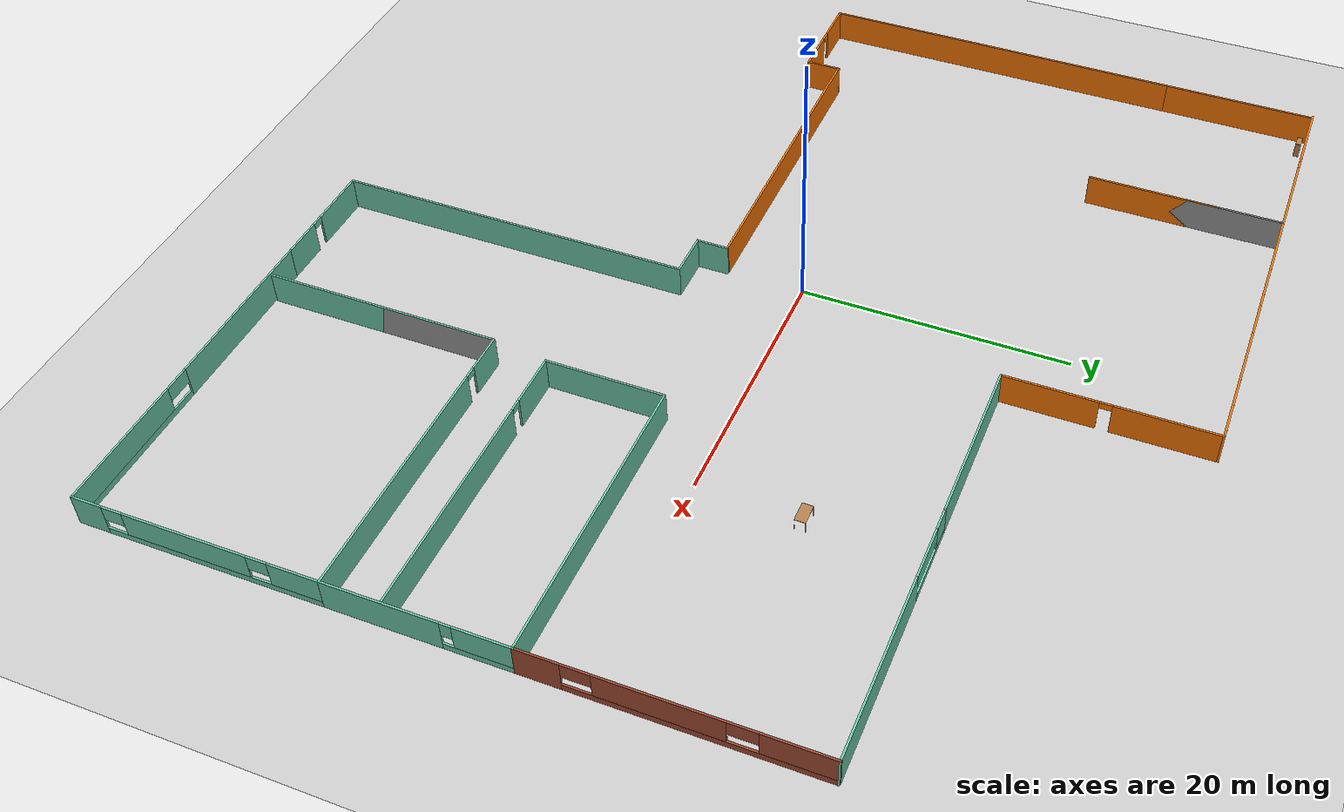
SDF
<sdf version="1.6">
 <world name="default">
  <plugin name="welcome_message" filename="libwelcome_message.so"/>
  <light name="sun" type="directional">
   <pose>0 0 10 0 -0 0</pose>
   <diffuse>0.8 0.8 0.8 1</diffuse>
   <specular>0.2 0.2 0.2 1</specular>
   <attenuation>
    <range>1000</range>
    <constant>0.9</constant>
    <linear>0.01</linear>
    <quadratic>0.001</quadratic>
   </attenuation>
   <direction>-0.5 0.1 -0.9</direction>
  </light>
  <model name="ground_plane">
   <static>1</static>
   <link name="link">
    <collision name="collision">
     <geometry><plane><normal>0 0 1</normal><size>100 100</size></plane></geometry>
     <surface>
      <contact><collide_bitmask>65535</collide_bitmask></contact>
      <friction><ode><mu>100</mu><mu2>50</mu2></ode></friction>
     </surface>
    </collision>
    <visual name="visual">
     <cast_shadows>0</cast_shadows>
     <geometry><plane><normal>0 0 1</normal><size>100 100</size></plane></geometry>
     <material>
      <script><uri>file://media/materials/scripts/gazebo.material</uri><name>Gazebo/Grey</name></script>
     </material>
    </visual>
   </link>
  </model>
  <gravity>0 0 -9.8</gravity>
  <magnetic_field>6e-06 2.3e-05 -4.2e-05</magnetic_field>
  <atmosphere type="adiabatic"/>
  <physics name="default_physics" default="0" type="ode">
   <max_step_size>0.001</max_step_size>
   <real_time_factor>1</real_time_factor>
   <real_time_update_rate>1000</real_time_update_rate>
  </physics>
  <scene><ambient>0.4 0.4 0.4 1</ambient><background>0.7 0.7 0.7 1</background><shadows>1</shadows></scene>
  <spherical_coordinates>
   <surface_model>EARTH_WGS84</surface_model>
   <latitude_deg>0</latitude_deg>
   <longitude_deg>0</longitude_deg>
   <elevation>0</elevation>
   <heading_deg>0</heading_deg>
  </spherical_coordinates>
  <model name="building1">
   <pose>2.8843 -1.97126 0 0 -0 0</pose>
   <link name="Wall_0">
    <collision name="Wall_0_Collision">
     <geometry><box><size>28.25 0.15 2.5</size></box></geometry>
     <pose>0 0 1.25 0 -0 0</pose>
    </collision>
    <visual name="Wall_0_Visual">
     <pose>0 0 1.25 0 -0 0</pose>
     <geometry><box><size>28.25 0.15 2.5</size></box></geometry>
     <material>
      <script><uri>file://media/materials/scripts/gazebo.material</uri><name>Gazebo/Grey</name></script>
      <ambient>0.996078 0.47451 0.0196078 1</ambient>
     </material>
     <meta><layer>0</layer></meta>
    </visual>
    <pose>-34.175 7.575 0 0 0 -1.5708</pose>
   </link>
   <link name="Wall_1">
    <pose>-30.375 -6.475 0 0 -0 0</pose>
    <visual name="Wall_1_Visual_0">
     <pose>-2.22971 0 1.25 0 -0 0</pose>
     <geometry><box><size>3.29058 0.15 2.5</size></box></geometry>
     <material>
      <script><uri>file://media/materials/scripts/gazebo.material</uri><name>Gazebo/Grey</name></script>
      <ambient>0.996078 0.47451 0.0196078 1</ambient>
     </material>
     <meta><layer>0</layer></meta>
    </visual>
    <collision name="Wall_1_Collision_0">
     <geometry><box><size>3.29058 0.15 2.5</size></box></geometry>
     <pose>-2.22971 0 1.25 0 -0 0</pose>
    </collision>
    <visual name="Wall_1_Visual_1">
     <pose>2.09529 0 1.25 0 -0 0</pose>
     <geometry><box><size>3.55942 0.15 2.5</size></box></geometry>
     <material>
      <script><uri>file://media/materials/scripts/gazebo.material</uri><name>Gazebo/Grey</name></script>
      <ambient>0.996078 0.47451 0.0196078 1</ambient>
     </material>
     <meta><layer>0</layer></meta>
    </visual>
    <collision name="Wall_1_Collision_1">
     <geometry><box><size>3.55942 0.15 2.5</size></box></geometry>
     <pose>2.09529 0 1.25 0 -0 0</pose>
    </collision>
    <visual name="Wall_1_Visual_2">
     <pose>-0.134418 0 2.25 0 -0 0</pose>
     <geometry><box><size>0.9 0.15 0.5</size></box></geometry>
     <material>
      <script><uri>file://media/materials/scripts/gazebo.material</uri><name>Gazebo/Grey</name></script>
      <ambient>0.996078 0.47451 0.0196078 1</ambient>
     </material>
     <meta><layer>0</layer></meta>
    </visual>
    <collision name="Wall_1_Collision_2">
     <geometry><box><size>0.9 0.15 0.5</size></box></geometry>
     <pose>-0.134418 0 2.25 0 -0 0</pose>
    </collision>
   </link>
   <link name="Wall_10">
    <pose>23.15 -15.225 0 0 -0 3.14159</pose>
    <visual name="Wall_10_Visual_0">
     <pose>-1.95259 0 1.25 0 -0 0</pose>
     <geometry><box><size>18.5948 0.15 2.5</size></box></geometry>
     <material>
      <script><uri>file://media/materials/scripts/gazebo.material</uri><name>Gazebo/Grey</name></script>
      <ambient>0.435294 0.796078 0.67451 1</ambient>
     </material>
     <meta><layer>0</layer></meta>
    </visual>
    <collision name="Wall_10_Collision_0">
     <geometry><box><size>18.5948 0.15 2.5</size></box></geometry>
     <pose>-1.95259 0 1.25 0 -0 0</pose>
    </collision>
    <visual name="Wall_10_Visual_1">
     <pose>9.74741 0 1.25 0 -0 0</pose>
     <geometry><box><size>3.00517 0.15 2.5</size></box></geometry>
     <material>
      <script><uri>file://media/materials/scripts/gazebo.material</uri><name>Gazebo/Grey</name></script>
      <ambient>0.435294 0.796078 0.67451 1</ambient>
     </material>
     <meta><layer>0</layer></meta>
    </visual>
    <collision name="Wall_10_Collision_1">
     <geometry><box><size>3.00517 0.15 2.5</size></box></geometry>
     <pose>9.74741 0 1.25 0 -0 0</pose>
    </collision>
    <visual name="Wall_10_Visual_2">
     <pose>7.79483 0 2.25 0 -0 0</pose>
     <geometry><box><size>0.9 0.15 0.5</size></box></geometry>
     <material>
      <script><uri>file://media/materials/scripts/gazebo.material</uri><name>Gazebo/Grey</name></script>
      <ambient>0.435294 0.796078 0.67451 1</ambient>
     </material>
     <meta><layer>0</layer></meta>
    </visual>
    <collision name="Wall_10_Collision_2">
     <geometry><box><size>0.9 0.15 0.5</size></box></geometry>
     <pose>7.79483 0 2.25 0 -0 0</pose>
    </collision>
   </link>
   <link name="Wall_11">
    <collision name="Wall_11_Collision">
     <geometry><box><size>18 0.15 2.5</size></box></geometry>
     <pose>0 0 1.25 0 -0 0</pose>
    </collision>
    <visual name="Wall_11_Visual">
     <pose>0 0 1.25 0 -0 0</pose>
     <geometry><box><size>18 0.15 2.5</size></box></geometry>
     <material>
      <script><uri>file://media/materials/scripts/gazebo.material</uri><name>Gazebo/Grey</name></script>
      <ambient>1 1 1 1</ambient>
     </material>
     <meta><layer>0</layer></meta>
    </visual>
    <pose>11.975 -24.15 0 0 0 -1.5708</pose>
   </link>
   <link name="Wall_12">
    <collision name="Wall_12_Collision">
     <geometry><box><size>17.5 0.15 2.5</size></box></geometry>
     <pose>0 0 1.25 0 -0 0</pose>
    </collision>
    <visual name="Wall_12_Visual">
     <pose>0 0 1.25 0 -0 0</pose>
     <geometry><box><size>17.5 0.15 2.5</size></box></geometry>
     <material>
      <script><uri>file://media/materials/scripts/gazebo.material</uri><name>Gazebo/Grey</name></script>
      <ambient>0.435294 0.796078 0.67451 1</ambient>
     </material>
     <meta><layer>0</layer></meta>
    </visual>
    <pose>11.975 -24.4 0 0 -0 1.5708</pose>
   </link>
   <link name="Wall_14">
    <pose>34.325 -8.675 0 0 -0 1.5708</pose>
    <visual name="Wall_14_Visual_0">
     <pose>-2.47216 0 1.25 0 -0 0</pose>
     <geometry><box><size>8.30568 0.15 2.5</size></box></geometry>
     <material>
      <script><uri>file://media/materials/scripts/gazebo.material</uri><name>Gazebo/Grey</name></script>
      <ambient>0.435294 0.796078 0.67451 1</ambient>
     </material>
     <meta><layer>0</layer></meta>
    </visual>
    <collision name="Wall_14_Collision_0">
     <geometry><box><size>8.30568 0.15 2.5</size></box></geometry>
     <pose>-2.47216 0 1.25 0 -0 0</pose>
    </collision>
    <visual name="Wall_14_Visual_1">
     <pose>4.15284 0 0.25 0 -0 0</pose>
     <geometry><box><size>4.94432 0.15 0.5</size></box></geometry>
     <material>
      <script><uri>file://media/materials/scripts/gazebo.material</uri><name>Gazebo/Grey</name></script>
      <ambient>0.435294 0.796078 0.67451 1</ambient>
     </material>
     <meta><layer>0</layer></meta>
    </visual>
    <collision name="Wall_14_Collision_1">
     <geometry><box><size>4.94432 0.15 0.5</size></box></geometry>
     <pose>4.15284 0 0.25 0 -0 0</pose>
    </collision>
    <visual name="Wall_14_Visual_2">
     <pose>4.55284 0 1.5 0 -0 0</pose>
     <geometry><box><size>4.14432 0.15 2</size></box></geometry>
     <material>
      <script><uri>file://media/materials/scripts/gazebo.material</uri><name>Gazebo/Grey</name></script>
      <ambient>0.435294 0.796078 0.67451 1</ambient>
     </material>
     <meta><layer>0</layer></meta>
    </visual>
    <collision name="Wall_14_Collision_2">
     <geometry><box><size>4.14432 0.15 2</size></box></geometry>
     <pose>4.55284 0 1.5 0 -0 0</pose>
    </collision>
    <visual name="Wall_14_Visual_3">
     <pose>2.08068 0 1.9 0 -0 0</pose>
     <geometry><box><size>0.8 0.15 1.2</size></box></geometry>
     <material>
      <script><uri>file://media/materials/scripts/gazebo.material</uri><name>Gazebo/Grey</name></script>
      <ambient>0.435294 0.796078 0.67451 1</ambient>
     </material>
     <meta><layer>0</layer></meta>
    </visual>
    <collision name="Wall_14_Collision_3">
     <geometry><box><size>0.8 0.15 1.2</size></box></geometry>
     <pose>2.08068 0 1.9 0 -0 0</pose>
    </collision>
   </link>
   <link name="Wall_15">
    <collision name="Wall_15_Collision">
     <geometry><box><size>22 0.15 2.5</size></box></geometry>
     <pose>0 0 1.25 0 -0 0</pose>
    </collision>
    <visual name="Wall_15_Visual">
     <pose>0 0 1.25 0 -0 0</pose>
     <geometry><box><size>22 0.15 2.5</size></box></geometry>
     <material>
      <script><uri>file://media/materials/scripts/gazebo.material</uri><name>Gazebo/Grey</name></script>
      <ambient>0.435294 0.796078 0.67451 1</ambient>
     </material>
     <meta><layer>0</layer></meta>
    </visual>
    <pose>23.4 -2.125 0 0 -0 3.14159</pose>
   </link>
   <link name="Wall_16">
    <collision name="Wall_16_Collision">
     <geometry><box><size>9 0.15 2.5</size></box></geometry>
     <pose>0 0 1.25 0 -0 0</pose>
    </collision>
    <visual name="Wall_16_Visual">
     <pose>0 0 1.25 0 -0 0</pose>
     <geometry><box><size>9 0.15 2.5</size></box></geometry>
     <material>
      <script><uri>file://media/materials/scripts/gazebo.material</uri><name>Gazebo/Grey</name></script>
      <ambient>0.435294 0.796078 0.67451 1</ambient>
     </material>
     <meta><layer>0</layer></meta>
    </visual>
    <pose>12.475 -6.55 0 0 0 -1.5708</pose>
   </link>
   <link name="Wall_17">
    <pose>23.4 -10.975 0 0 -0 0</pose>
    <visual name="Wall_17_Visual_0">
     <pose>-8.94755 0 1.25 0 -0 0</pose>
     <geometry><box><size>4.1049 0.15 2.5</size></box></geometry>
     <material>
      <script><uri>file://media/materials/scripts/gazebo.material</uri><name>Gazebo/Grey</name></script>
      <ambient>0.435294 0.796078 0.67451 1</ambient>
     </material>
     <meta><layer>0</layer></meta>
    </visual>
    <collision name="Wall_17_Collision_0">
     <geometry><box><size>4.1049 0.15 2.5</size></box></geometry>
     <pose>-8.94755 0 1.25 0 -0 0</pose>
    </collision>
    <visual name="Wall_17_Visual_1">
     <pose>2.50245 0 1.25 0 -0 0</pose>
     <geometry><box><size>16.9951 0.15 2.5</size></box></geometry>
     <material>
      <script><uri>file://media/materials/scripts/gazebo.material</uri><name>Gazebo/Grey</name></script>
      <ambient>0.435294 0.796078 0.67451 1</ambient>
     </material>
     <meta><layer>0</layer></meta>
    </visual>
    <collision name="Wall_17_Collision_1">
     <geometry><box><size>16.9951 0.15 2.5</size></box></geometry>
     <pose>2.50245 0 1.25 0 -0 0</pose>
    </collision>
    <visual name="Wall_17_Visual_2">
     <pose>-6.4451 0 2.25 0 -0 0</pose>
     <geometry><box><size>0.9 0.15 0.5</size></box></geometry>
     <material>
      <script><uri>file://media/materials/scripts/gazebo.material</uri><name>Gazebo/Grey</name></script>
      <ambient>0.435294 0.796078 0.67451 1</ambient>
     </material>
     <meta><layer>0</layer></meta>
    </visual>
    <collision name="Wall_17_Collision_2">
     <geometry><box><size>0.9 0.15 0.5</size></box></geometry>
     <pose>-6.4451 0 2.25 0 -0 0</pose>
    </collision>
   </link>
   <link name="Wall_19">
    <pose>34.325 8.05 0 0 -0 1.5708</pose>
    <visual name="Wall_19_Visual_0">
     <pose>-8.69186 0 1.25 0 -0 0</pose>
     <geometry><box><size>3.11628 0.15 2.5</size></box></geometry>
     <material>
      <script><uri>file://media/materials/scripts/gazebo.material</uri><name>Gazebo/Bricks</name></script>
      <ambient>0.435294 0.796078 0.67451 1</ambient>
     </material>
     <meta><layer>0</layer></meta>
    </visual>
    <collision name="Wall_19_Collision_0">
     <geometry><box><size>3.11628 0.15 2.5</size></box></geometry>
     <pose>-8.69186 0 1.25 0 -0 0</pose>
    </collision>
    <visual name="Wall_19_Visual_1">
     <pose>1.55814 0 0.25 0 -0 0</pose>
     <geometry><box><size>17.3837 0.15 0.5</size></box></geometry>
     <material>
      <script><uri>file://media/materials/scripts/gazebo.material</uri><name>Gazebo/Bricks</name></script>
      <ambient>0.435294 0.796078 0.67451 1</ambient>
     </material>
     <meta><layer>0</layer></meta>
    </visual>
    <collision name="Wall_19_Collision_1">
     <geometry><box><size>17.3837 0.15 0.5</size></box></geometry>
     <pose>1.55814 0 0.25 0 -0 0</pose>
    </collision>
    <visual name="Wall_19_Visual_2">
     <pose>-0.896427 0 1.5 0 -0 0</pose>
     <geometry><box><size>8.47458 0.15 2</size></box></geometry>
     <material>
      <script><uri>file://media/materials/scripts/gazebo.material</uri><name>Gazebo/Bricks</name></script>
      <ambient>0.435294 0.796078 0.67451 1</ambient>
     </material>
     <meta><layer>0</layer></meta>
    </visual>
    <collision name="Wall_19_Collision_2">
     <geometry><box><size>8.47458 0.15 2</size></box></geometry>
     <pose>-0.896427 0 1.5 0 -0 0</pose>
    </collision>
    <visual name="Wall_19_Visual_3">
     <pose>7.79543 0 1.5 0 -0 0</pose>
     <geometry><box><size>4.90914 0.15 2</size></box></geometry>
     <material>
      <script><uri>file://media/materials/scripts/gazebo.material</uri><name>Gazebo/Bricks</name></script>
      <ambient>0.435294 0.796078 0.67451 1</ambient>
     </material>
     <meta><layer>0</layer></meta>
    </visual>
    <collision name="Wall_19_Collision_3">
     <geometry><box><size>4.90914 0.15 2</size></box></geometry>
     <pose>7.79543 0 1.5 0 -0 0</pose>
    </collision>
    <visual name="Wall_19_Visual_4">
     <pose>-6.13372 0 1.9 0 -0 0</pose>
     <geometry><box><size>2 0.15 1.2</size></box></geometry>
     <material>
      <script><uri>file://media/materials/scripts/gazebo.material</uri><name>Gazebo/Bricks</name></script>
      <ambient>0.435294 0.796078 0.67451 1</ambient>
     </material>
     <meta><layer>0</layer></meta>
    </visual>
    <collision name="Wall_19_Collision_4">
     <geometry><box><size>2 0.15 1.2</size></box></geometry>
     <pose>-6.13372 0 1.9 0 -0 0</pose>
    </collision>
    <visual name="Wall_19_Visual_5">
     <pose>4.34086 0 1.9 0 -0 0</pose>
     <geometry><box><size>2 0.15 1.2</size></box></geometry>
     <material>
      <script><uri>file://media/materials/scripts/gazebo.material</uri><name>Gazebo/Bricks</name></script>
      <ambient>0.435294 0.796078 0.67451 1</ambient>
     </material>
     <meta><layer>0</layer></meta>
    </visual>
    <collision name="Wall_19_Collision_5">
     <geometry><box><size>2 0.15 1.2</size></box></geometry>
     <pose>4.34086 0 1.9 0 -0 0</pose>
    </collision>
   </link>
   <link name="Wall_2">
    <collision name="Wall_2_Collision">
     <geometry><box><size>2.75 0.15 2.5</size></box></geometry>
     <pose>0 0 1.25 0 -0 0</pose>
    </collision>
    <visual name="Wall_2_Visual">
     <pose>0 0 1.25 0 -0 0</pose>
     <geometry><box><size>2.75 0.15 2.5</size></box></geometry>
     <material>
      <script><uri>file://media/materials/scripts/gazebo.material</uri><name>Gazebo/Grey</name></script>
      <ambient>0.996078 0.47451 0.0196078 1</ambient>
     </material>
     <meta><layer>0</layer></meta>
    </visual>
    <pose>-26.575 -5.175 0 0 -0 1.5708</pose>
   </link>
   <link name="Wall_20">
    <pose>24.65 18.225 0 0 -0 3.14159</pose>
    <visual name="Wall_20_Visual_0">
     <pose>-2.88254 0 1.25 0 -0 0</pose>
     <geometry><box><size>13.7349 0.15 2.5</size></box></geometry>
     <material>
      <script><uri>file://media/materials/scripts/gazebo.material</uri><name>Gazebo/Grey</name></script>
      <ambient>0.435294 0.796078 0.67451 1</ambient>
     </material>
     <meta><layer>0</layer></meta>
    </visual>
    <collision name="Wall_20_Collision_0">
     <geometry><box><size>13.7349 0.15 2.5</size></box></geometry>
     <pose>-2.88254 0 1.25 0 -0 0</pose>
    </collision>
    <visual name="Wall_20_Visual_1">
     <pose>6.86746 0 0.25 0 -0 0</pose>
     <geometry><box><size>5.76509 0.15 0.5</size></box></geometry>
     <material>
      <script><uri>file://media/materials/scripts/gazebo.material</uri><name>Gazebo/Grey</name></script>
      <ambient>0.435294 0.796078 0.67451 1</ambient>
     </material>
     <meta><layer>0</layer></meta>
    </visual>
    <collision name="Wall_20_Collision_1">
     <geometry><box><size>5.76509 0.15 0.5</size></box></geometry>
     <pose>6.86746 0 0.25 0 -0 0</pose>
    </collision>
    <visual name="Wall_20_Visual_2">
     <pose>8.86746 0 1.5 0 -0 0</pose>
     <geometry><box><size>1.76509 0.15 2</size></box></geometry>
     <material>
      <script><uri>file://media/materials/scripts/gazebo.material</uri><name>Gazebo/Grey</name></script>
      <ambient>0.435294 0.796078 0.67451 1</ambient>
     </material>
     <meta><layer>0</layer></meta>
    </visual>
    <collision name="Wall_20_Collision_2">
     <geometry><box><size>1.76509 0.15 2</size></box></geometry>
     <pose>8.86746 0 1.5 0 -0 0</pose>
    </collision>
    <visual name="Wall_20_Visual_3">
     <pose>5.98491 0 1.9 0 -0 0</pose>
     <geometry><box><size>4 0.15 1.2</size></box></geometry>
     <material>
      <script><uri>file://media/materials/scripts/gazebo.material</uri><name>Gazebo/Grey</name></script>
      <ambient>0.435294 0.796078 0.67451 1</ambient>
     </material>
     <meta><layer>0</layer></meta>
    </visual>
    <collision name="Wall_20_Collision_3">
     <geometry><box><size>4 0.15 1.2</size></box></geometry>
     <pose>5.98491 0 1.9 0 -0 0</pose>
    </collision>
   </link>
   <link name="Wall_21">
    <collision name="Wall_21_Collision">
     <geometry><box><size>12.75 0.15 2.5</size></box></geometry>
     <pose>0 0 1.25 0 -0 0</pose>
    </collision>
    <visual name="Wall_21_Visual">
     <pose>0 0 1.25 0 -0 0</pose>
     <geometry><box><size>12.75 0.15 2.5</size></box></geometry>
     <material>
      <script><uri>file://media/materials/scripts/gazebo.material</uri><name>Gazebo/Grey</name></script>
      <ambient>0.435294 0.796078 0.67451 1</ambient>
     </material>
     <meta><layer>0</layer></meta>
    </visual>
    <pose>8.675 18.225 0 0 -0 3.14159</pose>
   </link>
   <link name="Wall_22">
    <pose>2.375 25.775 0 0 -0 1.5708</pose>
    <visual name="Wall_22_Visual_0">
     <pose>-4.18684 0 1.25 0 -0 0</pose>
     <geometry><box><size>6.87632 0.15 2.5</size></box></geometry>
     <material>
      <script><uri>file://media/materials/scripts/gazebo.material</uri><name>Gazebo/Grey</name></script>
      <ambient>0.996078 0.47451 0.0196078 1</ambient>
     </material>
     <meta><layer>0</layer></meta>
    </visual>
    <collision name="Wall_22_Collision_0">
     <geometry><box><size>6.87632 0.15 2.5</size></box></geometry>
     <pose>-4.18684 0 1.25 0 -0 0</pose>
    </collision>
    <visual name="Wall_22_Visual_1">
     <pose>3.88816 0 1.25 0 -0 0</pose>
     <geometry><box><size>7.47368 0.15 2.5</size></box></geometry>
     <material>
      <script><uri>file://media/materials/scripts/gazebo.material</uri><name>Gazebo/Grey</name></script>
      <ambient>0.996078 0.47451 0.0196078 1</ambient>
     </material>
     <meta><layer>0</layer></meta>
    </visual>
    <collision name="Wall_22_Collision_1">
     <geometry><box><size>7.47368 0.15 2.5</size></box></geometry>
     <pose>3.88816 0 1.25 0 -0 0</pose>
    </collision>
    <visual name="Wall_22_Visual_2">
     <pose>-0.298676 0 2.25 0 -0 0</pose>
     <geometry><box><size>0.9 0.15 0.5</size></box></geometry>
     <material>
      <script><uri>file://media/materials/scripts/gazebo.material</uri><name>Gazebo/Grey</name></script>
      <ambient>0.996078 0.47451 0.0196078 1</ambient>
     </material>
     <meta><layer>0</layer></meta>
    </visual>
    <collision name="Wall_22_Collision_2">
     <geometry><box><size>0.9 0.15 0.5</size></box></geometry>
     <pose>-0.298676 0 2.25 0 -0 0</pose>
    </collision>
   </link>
   <link name="Wall_23">
    <pose>-9.05 33.325 0 0 -0 3.14159</pose>
    <visual name="Wall_23_Visual_0">
     <pose>-6.28232 0 1.25 0 -0 0</pose>
     <geometry><box><size>10.4354 0.15 2.5</size></box></geometry>
     <material>
      <script><uri>file://media/materials/scripts/gazebo.material</uri><name>Gazebo/Grey</name></script>
      <ambient>0.996078 0.47451 0.0196078 1</ambient>
     </material>
     <meta><layer>0</layer></meta>
    </visual>
    <collision name="Wall_23_Collision_0">
     <geometry><box><size>10.4354 0.15 2.5</size></box></geometry>
     <pose>-6.28232 0 1.25 0 -0 0</pose>
    </collision>
    <visual name="Wall_23_Visual_1">
     <pose>5.21768 0 0.25 0 -0 0</pose>
     <geometry><box><size>12.5646 0.15 0.5</size></box></geometry>
     <material>
      <script><uri>file://media/materials/scripts/gazebo.material</uri><name>Gazebo/Grey</name></script>
      <ambient>0.996078 0.47451 0.0196078 1</ambient>
     </material>
     <meta><layer>0</layer></meta>
    </visual>
    <collision name="Wall_23_Collision_1">
     <geometry><box><size>12.5646 0.15 0.5</size></box></geometry>
     <pose>5.21768 0 0.25 0 -0 0</pose>
    </collision>
    <visual name="Wall_23_Visual_2">
     <pose>6.71768 0 1.5 0 -0 0</pose>
     <geometry><box><size>9.56464 0.15 2</size></box></geometry>
     <material>
      <script><uri>file://media/materials/scripts/gazebo.material</uri><name>Gazebo/Grey</name></script>
      <ambient>0.996078 0.47451 0.0196078 1</ambient>
     </material>
     <meta><layer>0</layer></meta>
    </visual>
    <collision name="Wall_23_Collision_2">
     <geometry><box><size>9.56464 0.15 2</size></box></geometry>
     <pose>6.71768 0 1.5 0 -0 0</pose>
    </collision>
    <visual name="Wall_23_Visual_3">
     <pose>0.435356 0 1.9 0 -0 0</pose>
     <geometry><box><size>3 0.15 1.2</size></box></geometry>
     <material>
      <script><uri>file://media/materials/scripts/gazebo.material</uri><name>Gazebo/Grey</name></script>
      <ambient>0.996078 0.47451 0.0196078 1</ambient>
     </material>
     <meta><layer>0</layer></meta>
    </visual>
    <collision name="Wall_23_Collision_3">
     <geometry><box><size>3 0.15 1.2</size></box></geometry>
     <pose>0.435356 0 1.9 0 -0 0</pose>
    </collision>
   </link>
   <link name="Wall_24">
    <collision name="Wall_24_Collision">
     <geometry><box><size>14.75 0.15 2.5</size></box></geometry>
     <pose>0 0 1.25 0 -0 0</pose>
    </collision>
    <visual name="Wall_24_Visual">
     <pose>0 0 1.25 0 -0 0</pose>
     <geometry><box><size>14.75 0.15 2.5</size></box></geometry>
     <material>
      <script><uri>file://media/materials/scripts/gazebo.material</uri><name>Gazebo/Grey</name></script>
      <ambient>1 1 1 1</ambient>
     </material>
     <meta><layer>0</layer></meta>
    </visual>
    <pose>-20.475 26.025 0 0 0 -1.5708</pose>
   </link>
   <link name="Wall_25">
    <collision name="Wall_25_Collision">
     <geometry><box><size>14.5 0.15 2.5</size></box></geometry>
     <pose>0 0 1.25 0 -0 0</pose>
    </collision>
    <visual name="Wall_25_Visual">
     <pose>0 0 1.25 0 -0 0</pose>
     <geometry><box><size>14.5 0.15 2.5</size></box></geometry>
     <material>
      <script><uri>file://media/materials/scripts/gazebo.material</uri><name>Gazebo/Grey</name></script>
      <ambient>0.996078 0.47451 0.0196078 1</ambient>
     </material>
     <meta><layer>0</layer></meta>
    </visual>
    <pose>-20.475 25.9 0 0 -0 1.5708</pose>
   </link>
   <link name="Wall_26">
    <collision name="Wall_26_Collision">
     <geometry><box><size>0.4 0.15 2.5</size></box></geometry>
     <pose>0 0 1.25 0 -0 0</pose>
    </collision>
    <visual name="Wall_26_Visual">
     <pose>0 0 1.25 0 -0 0</pose>
     <geometry><box><size>0.4 0.15 2.5</size></box></geometry>
     <material>
      <script><uri>file://media/materials/scripts/gazebo.material</uri><name>Gazebo/Grey</name></script>
      <ambient>1 1 1 1</ambient>
     </material>
     <meta><layer>0</layer></meta>
    </visual>
    <pose>-20.475 33.2 0 0 -0 1.5708</pose>
   </link>
   <link name="Wall_27">
    <pose>-27.4 33.325 0 0 -0 3.14159</pose>
    <visual name="Wall_27_Visual_0">
     <pose>-3.49206 0 1.25 0 -0 0</pose>
     <geometry><box><size>7.01587 0.15 2.5</size></box></geometry>
     <material>
      <script><uri>file://media/materials/scripts/gazebo.material</uri><name>Gazebo/Grey</name></script>
      <ambient>0.996078 0.47451 0.0196078 1</ambient>
     </material>
     <meta><layer>0</layer></meta>
    </visual>
    <collision name="Wall_27_Collision_0">
     <geometry><box><size>7.01587 0.15 2.5</size></box></geometry>
     <pose>-3.49206 0 1.25 0 -0 0</pose>
    </collision>
    <visual name="Wall_27_Visual_1">
     <pose>3.50794 0 0.25 0 -0 0</pose>
     <geometry><box><size>6.98413 0.15 0.5</size></box></geometry>
     <material>
      <script><uri>file://media/materials/scripts/gazebo.material</uri><name>Gazebo/Grey</name></script>
      <ambient>0.996078 0.47451 0.0196078 1</ambient>
     </material>
     <meta><layer>0</layer></meta>
    </visual>
    <collision name="Wall_27_Collision_1">
     <geometry><box><size>6.98413 0.15 0.5</size></box></geometry>
     <pose>3.50794 0 0.25 0 -0 0</pose>
    </collision>
    <visual name="Wall_27_Visual_2">
     <pose>3.90794 0 1.5 0 -0 0</pose>
     <geometry><box><size>6.18413 0.15 2</size></box></geometry>
     <material>
      <script><uri>file://media/materials/scripts/gazebo.material</uri><name>Gazebo/Grey</name></script>
      <ambient>0.996078 0.47451 0.0196078 1</ambient>
     </material>
     <meta><layer>0</layer></meta>
    </visual>
    <collision name="Wall_27_Collision_2">
     <geometry><box><size>6.18413 0.15 2</size></box></geometry>
     <pose>3.90794 0 1.5 0 -0 0</pose>
    </collision>
    <visual name="Wall_27_Visual_3">
     <pose>0.415874 0 1.9 0 -0 0</pose>
     <geometry><box><size>0.8 0.15 1.2</size></box></geometry>
     <material>
      <script><uri>file://media/materials/scripts/gazebo.material</uri><name>Gazebo/Grey</name></script>
      <ambient>0.996078 0.47451 0.0196078 1</ambient>
     </material>
     <meta><layer>0</layer></meta>
    </visual>
    <collision name="Wall_27_Collision_3">
     <geometry><box><size>0.8 0.15 1.2</size></box></geometry>
     <pose>0.415874 0 1.9 0 -0 0</pose>
    </collision>
   </link>
   <link name="Wall_3">
    <collision name="Wall_3_Collision">
     <geometry><box><size>24 0.15 2.5</size></box></geometry>
     <pose>0 0 1.25 0 -0 0</pose>
    </collision>
    <visual name="Wall_3_Visual">
     <pose>0 0 1.25 0 -0 0</pose>
     <geometry><box><size>24 0.15 2.5</size></box></geometry>
     <material>
      <script><uri>file://media/materials/scripts/gazebo.material</uri><name>Gazebo/Grey</name></script>
      <ambient>0.996078 0.47451 0.0196078 1</ambient>
     </material>
     <meta><layer>0</layer></meta>
    </visual>
    <pose>-14.65 -3.875 0 0 -0 0</pose>
   </link>
   <link name="Wall_30">
    <collision name="Wall_30_Collision">
     <geometry><box><size>11.75 0.15 2.5</size></box></geometry>
     <pose>0 0 1.25 0 -0 0</pose>
    </collision>
    <visual name="Wall_30_Visual">
     <pose>0 0 1.25 0 -0 0</pose>
     <geometry><box><size>11.75 0.15 2.5</size></box></geometry>
     <material>
      <script><uri>file://media/materials/scripts/gazebo.material</uri><name>Gazebo/Grey</name></script>
      <ambient>0.996078 0.47451 0.0196078 1</ambient>
     </material>
     <meta><layer>0</layer></meta>
    </visual>
    <pose>-34.175 27.425 0 0 -0 1.5708</pose>
   </link>
   <link name="Wall_4">
    <collision name="Wall_4_Collision">
     <geometry><box><size>2.5 0.15 2.5</size></box></geometry>
     <pose>0 0 1.25 0 -0 0</pose>
    </collision>
    <visual name="Wall_4_Visual">
     <pose>0 0 1.25 0 -0 0</pose>
     <geometry><box><size>2.5 0.15 2.5</size></box></geometry>
     <material>
      <script><uri>file://media/materials/scripts/gazebo.material</uri><name>Gazebo/Grey</name></script>
      <ambient>0.435294 0.796078 0.67451 1</ambient>
     </material>
     <meta><layer>0</layer></meta>
    </visual>
    <pose>-2.725 -5.05 0 0 0 -1.5708</pose>
   </link>
   <link name="Wall_5">
    <collision name="Wall_5_Collision">
     <geometry><box><size>3.5 0.15 2.5</size></box></geometry>
     <pose>0 0 1.25 0 -0 0</pose>
    </collision>
    <visual name="Wall_5_Visual">
     <pose>0 0 1.25 0 -0 0</pose>
     <geometry><box><size>3.5 0.15 2.5</size></box></geometry>
     <material>
      <script><uri>file://media/materials/scripts/gazebo.material</uri><name>Gazebo/Grey</name></script>
      <ambient>0.435294 0.796078 0.67451 1</ambient>
     </material>
     <meta><layer>0</layer></meta>
    </visual>
    <pose>-1.05 -6.225 0 0 -0 0</pose>
   </link>
   <link name="Wall_6">
    <collision name="Wall_6_Collision">
     <geometry><box><size>27.25 0.15 2.5</size></box></geometry>
     <pose>0 0 1.25 0 -0 0</pose>
    </collision>
    <visual name="Wall_6_Visual">
     <pose>0 0 1.25 0 -0 0</pose>
     <geometry><box><size>27.25 0.15 2.5</size></box></geometry>
     <material>
      <script><uri>file://media/materials/scripts/gazebo.material</uri><name>Gazebo/Grey</name></script>
      <ambient>0.435294 0.796078 0.67451 1</ambient>
     </material>
     <meta><layer>0</layer></meta>
    </visual>
    <pose>0.625002 -19.775 0 0 0 -1.5708</pose>
   </link>
   <link name="Wall_7">
    <pose>4.925 -33.325 0 0 -0 0</pose>
    <visual name="Wall_7_Visual_0">
     <pose>-2.04468 0 1.25 0 -0 0</pose>
     <geometry><box><size>4.66063 0.15 2.5</size></box></geometry>
     <material>
      <script><uri>file://media/materials/scripts/gazebo.material</uri><name>Gazebo/Grey</name></script>
      <ambient>0.435294 0.796078 0.67451 1</ambient>
     </material>
     <meta><layer>0</layer></meta>
    </visual>
    <collision name="Wall_7_Collision_0">
     <geometry><box><size>4.66063 0.15 2.5</size></box></geometry>
     <pose>-2.04468 0 1.25 0 -0 0</pose>
    </collision>
    <visual name="Wall_7_Visual_1">
     <pose>2.78031 0 1.25 0 -0 0</pose>
     <geometry><box><size>3.18937 0.15 2.5</size></box></geometry>
     <material>
      <script><uri>file://media/materials/scripts/gazebo.material</uri><name>Gazebo/Grey</name></script>
      <ambient>0.435294 0.796078 0.67451 1</ambient>
     </material>
     <meta><layer>0</layer></meta>
    </visual>
    <collision name="Wall_7_Collision_1">
     <geometry><box><size>3.18937 0.15 2.5</size></box></geometry>
     <pose>2.78031 0 1.25 0 -0 0</pose>
    </collision>
    <visual name="Wall_7_Visual_2">
     <pose>0.73563 0 2.25 0 -0 0</pose>
     <geometry><box><size>0.9 0.15 0.5</size></box></geometry>
     <material>
      <script><uri>file://media/materials/scripts/gazebo.material</uri><name>Gazebo/Grey</name></script>
      <ambient>0.435294 0.796078 0.67451 1</ambient>
     </material>
     <meta><layer>0</layer></meta>
    </visual>
    <collision name="Wall_7_Collision_2">
     <geometry><box><size>0.9 0.15 0.5</size></box></geometry>
     <pose>0.73563 0 2.25 0 -0 0</pose>
    </collision>
   </link>
   <link name="Wall_8">
    <pose>21.775 -33.325 0 0 -0 0</pose>
    <visual name="Wall_8_Visual_0">
     <pose>-6.07614 0 1.25 0 -0 0</pose>
     <geometry><box><size>13.0977 0.15 2.5</size></box></geometry>
     <material>
      <script><uri>file://media/materials/scripts/gazebo.material</uri><name>Gazebo/Grey</name></script>
      <ambient>0.435294 0.796078 0.67451 1</ambient>
     </material>
     <meta><layer>0</layer></meta>
    </visual>
    <collision name="Wall_8_Collision_0">
     <geometry><box><size>13.0977 0.15 2.5</size></box></geometry>
     <pose>-6.07614 0 1.25 0 -0 0</pose>
    </collision>
    <visual name="Wall_8_Visual_1">
     <pose>6.54886 0 0.25 0 -0 0</pose>
     <geometry><box><size>12.1523 0.15 0.5</size></box></geometry>
     <material>
      <script><uri>file://media/materials/scripts/gazebo.material</uri><name>Gazebo/Grey</name></script>
      <ambient>0.435294 0.796078 0.67451 1</ambient>
     </material>
     <meta><layer>0</layer></meta>
    </visual>
    <collision name="Wall_8_Collision_1">
     <geometry><box><size>12.1523 0.15 0.5</size></box></geometry>
     <pose>6.54886 0 0.25 0 -0 0</pose>
    </collision>
    <visual name="Wall_8_Visual_2">
     <pose>7.54886 0 1.5 0 -0 0</pose>
     <geometry><box><size>10.1523 0.15 2</size></box></geometry>
     <material>
      <script><uri>file://media/materials/scripts/gazebo.material</uri><name>Gazebo/Grey</name></script>
      <ambient>0.435294 0.796078 0.67451 1</ambient>
     </material>
     <meta><layer>0</layer></meta>
    </visual>
    <collision name="Wall_8_Collision_2">
     <geometry><box><size>10.1523 0.15 2</size></box></geometry>
     <pose>7.54886 0 1.5 0 -0 0</pose>
    </collision>
    <visual name="Wall_8_Visual_3">
     <pose>1.47272 0 1.9 0 -0 0</pose>
     <geometry><box><size>2 0.15 1.2</size></box></geometry>
     <material>
      <script><uri>file://media/materials/scripts/gazebo.material</uri><name>Gazebo/Grey</name></script>
      <ambient>0.435294 0.796078 0.67451 1</ambient>
     </material>
     <meta><layer>0</layer></meta>
    </visual>
    <collision name="Wall_8_Collision_3">
     <geometry><box><size>2 0.15 1.2</size></box></geometry>
     <pose>1.47272 0 1.9 0 -0 0</pose>
    </collision>
   </link>
   <link name="Wall_9">
    <pose>34.325 -24.275 0 0 -0 1.5708</pose>
    <visual name="Wall_9_Visual_0">
     <pose>-7.9629 0 1.25 0 -0 0</pose>
     <geometry><box><size>2.3242 0.15 2.5</size></box></geometry>
     <material>
      <script><uri>file://media/materials/scripts/gazebo.material</uri><name>Gazebo/Grey</name></script>
      <ambient>0.435294 0.796078 0.67451 1</ambient>
     </material>
     <meta><layer>0</layer></meta>
    </visual>
    <collision name="Wall_9_Collision_0">
     <geometry><box><size>2.3242 0.15 2.5</size></box></geometry>
     <pose>-7.9629 0 1.25 0 -0 0</pose>
    </collision>
    <visual name="Wall_9_Visual_1">
     <pose>1.1621 0 0.25 0 -0 0</pose>
     <geometry><box><size>15.9258 0.15 0.5</size></box></geometry>
     <material>
      <script><uri>file://media/materials/scripts/gazebo.material</uri><name>Gazebo/Grey</name></script>
      <ambient>0.435294 0.796078 0.67451 1</ambient>
     </material>
     <meta><layer>0</layer></meta>
    </visual>
    <collision name="Wall_9_Collision_1">
     <geometry><box><size>15.9258 0.15 0.5</size></box></geometry>
     <pose>1.1621 0 0.25 0 -0 0</pose>
    </collision>
    <visual name="Wall_9_Visual_2">
     <pose>-0.731672 0 1.5 0 -0 0</pose>
     <geometry><box><size>9.13825 0.15 2</size></box></geometry>
     <material>
      <script><uri>file://media/materials/scripts/gazebo.material</uri><name>Gazebo/Grey</name></script>
      <ambient>0.435294 0.796078 0.67451 1</ambient>
     </material>
     <meta><layer>0</layer></meta>
    </visual>
    <collision name="Wall_9_Collision_2">
     <geometry><box><size>9.13825 0.15 2</size></box></geometry>
     <pose>-0.731672 0 1.5 0 -0 0</pose>
    </collision>
    <visual name="Wall_9_Visual_3">
     <pose>7.23123 0 1.5 0 -0 0</pose>
     <geometry><box><size>3.78755 0.15 2</size></box></geometry>
     <material>
      <script><uri>file://media/materials/scripts/gazebo.material</uri><name>Gazebo/Grey</name></script>
      <ambient>0.435294 0.796078 0.67451 1</ambient>
     </material>
     <meta><layer>0</layer></meta>
    </visual>
    <collision name="Wall_9_Collision_3">
     <geometry><box><size>3.78755 0.15 2</size></box></geometry>
     <pose>7.23123 0 1.5 0 -0 0</pose>
    </collision>
    <visual name="Wall_9_Visual_4">
     <pose>-6.0508 0 1.9 0 -0 0</pose>
     <geometry><box><size>1.5 0.15 1.2</size></box></geometry>
     <material>
      <script><uri>file://media/materials/scripts/gazebo.material</uri><name>Gazebo/Grey</name></script>
      <ambient>0.435294 0.796078 0.67451 1</ambient>
     </material>
     <meta><layer>0</layer></meta>
    </visual>
    <collision name="Wall_9_Collision_4">
     <geometry><box><size>1.5 0.15 1.2</size></box></geometry>
     <pose>-6.0508 0 1.9 0 -0 0</pose>
    </collision>
    <visual name="Wall_9_Visual_5">
     <pose>4.58745 0 1.9 0 -0 0</pose>
     <geometry><box><size>1.5 0.15 1.2</size></box></geometry>
     <material>
      <script><uri>file://media/materials/scripts/gazebo.material</uri><name>Gazebo/Grey</name></script>
      <ambient>0.435294 0.796078 0.67451 1</ambient>
     </material>
     <meta><layer>0</layer></meta>
    </visual>
    <collision name="Wall_9_Collision_5">
     <geometry><box><size>1.5 0.15 1.2</size></box></geometry>
     <pose>4.58745 0 1.9 0 -0 0</pose>
    </collision>
   </link>
   <static>1</static>
  </model>
  <model name="table">
   <static>1</static>
   <link name="link">
    <collision name="surface">
     <pose>0 0 1 0 -0 0</pose>
     <geometry><box><size>1.5 0.8 0.03</size></box></geometry>
     <surface><friction><ode><mu>0.6</mu><mu2>0.6</mu2></ode></friction></surface>
    </collision>
    <visual name="visual1">
     <pose>0 0 1 0 -0 0</pose>
     <geometry><box><size>1.5 0.8 0.03</size></box></geometry>
     <material>
      <script><uri>file://media/materials/scripts/gazebo.material</uri><name>Gazebo/Wood</name></script>
     </material>
    </visual>
    <collision name="front_left_leg">
     <pose>0.68 0.38 0.5 0 -0 0</pose>
     <geometry><cylinder><radius>0.02</radius><length>1</length></cylinder></geometry>
    </collision>
    <visual name="front_left_leg">
     <pose>0.68 0.38 0.5 0 -0 0</pose>
     <geometry><cylinder><radius>0.02</radius><length>1</length></cylinder></geometry>
     <material>
      <script><uri>file://media/materials/scripts/gazebo.material</uri><name>Gazebo/Grey</name></script>
     </material>
    </visual>
    <collision name="front_right_leg">
     <pose>0.68 -0.38 0.5 0 -0 0</pose>
     <geometry><cylinder><radius>0.02</radius><length>1</length></cylinder></geometry>
    </collision>
    <visual name="front_right_leg">
     <pose>0.68 -0.38 0.5 0 -0 0</pose>
     <geometry><cylinder><radius>0.02</radius><length>1</length></cylinder></geometry>
     <material>
      <script><uri>file://media/materials/scripts/gazebo.material</uri><name>Gazebo/Grey</name></script>
     </material>
    </visual>
    <collision name="back_right_leg">
     <pose>-0.68 -0.38 0.5 0 -0 0</pose>
     <geometry><cylinder><radius>0.02</radius><length>1</length></cylinder></geometry>
    </collision>
    <visual name="back_right_leg">
     <pose>-0.68 -0.38 0.5 0 -0 0</pose>
     <geometry><cylinder><radius>0.02</radius><length>1</length></cylinder></geometry>
     <material>
      <script><uri>file://media/materials/scripts/gazebo.material</uri><name>Gazebo/Grey</name></script>
     </material>
    </visual>
    <collision name="back_left_leg">
     <pose>-0.68 0.38 0.5 0 -0 0</pose>
     <geometry><cylinder><radius>0.02</radius><length>1</length></cylinder></geometry>
    </collision>
    <visual name="back_left_leg">
     <pose>-0.68 0.38 0.5 0 -0 0</pose>
     <geometry><cylinder><radius>0.02</radius><length>1</length></cylinder></geometry>
     <material>
      <script><uri>file://media/materials/scripts/gazebo.material</uri><name>Gazebo/Grey</name></script>
     </material>
    </visual>
   </link>
   <pose>20.2564 7.73132 0 0 -0 0</pose>
  </model>
  <model name="bookshelf">
   <static>1</static>
   <link name="link">
    <inertial><mass>1</mass></inertial>
    <collision name="back">
     <pose>0 0.005 0.6 0 -0 0</pose>
     <geometry><box><size>0.9 0.01 1.2</size></box></geometry>
    </collision>
    <visual name="visual1">
     <pose>0 0.005 0.6 0 -0 0</pose>
     <geometry><box><size>0.9 0.01 1.2</size></box></geometry>
     <material>
      <script><uri>file://media/materials/scripts/gazebo.material</uri><name>Gazebo/Wood</name></script>
     </material>
    </visual>
    <collision name="left_side">
     <pose>0.45 -0.195 0.6 0 -0 0</pose>
     <geometry><box><size>0.02 0.4 1.2</size></box></geometry>
    </collision>
    <visual name="visual2">
     <pose>0.45 -0.195 0.6 0 -0 0</pose>
     <geometry><box><size>0.02 0.4 1.2</size></box></geometry>
     <material>
      <script><uri>file://media/materials/scripts/gazebo.material</uri><name>Gazebo/Wood</name></script>
     </material>
    </visual>
    <collision name="right_side">
     <pose>-0.45 -0.195 0.6 0 -0 0</pose>
     <geometry><box><size>0.02 0.4 1.2</size></box></geometry>
    </collision>
    <visual name="visual3">
     <pose>-0.45 -0.195 0.6 0 -0 0</pose>
     <geometry><box><size>0.02 0.4 1.2</size></box></geometry>
     <material>
      <script><uri>file://media/materials/scripts/gazebo.material</uri><name>Gazebo/Wood</name></script>
     </material>
    </visual>
    <collision name="bottom">
     <pose>0 -0.195 0.03 0 -0 0</pose>
     <geometry><box><size>0.88 0.4 0.06</size></box></geometry>
    </collision>
    <visual name="visual4">
     <pose>0 -0.195 0.03 0 -0 0</pose>
     <geometry><box><size>0.88 0.4 0.06</size></box></geometry>
     <material>
      <script><uri>file://media/materials/scripts/gazebo.material</uri><name>Gazebo/Wood</name></script>
     </material>
    </visual>
    <collision name="top">
     <pose>0 -0.195 1.19 0 -0 0</pose>
     <geometry><box><size>0.88 0.4 0.02</size></box></geometry>
    </collision>
    <visual name="visual5">
     <pose>0 -0.195 1.19 0 -0 0</pose>
     <geometry><box><size>0.88 0.4 0.02</size></box></geometry>
     <material>
      <script><uri>file://media/materials/scripts/gazebo.material</uri><name>Gazebo/Wood</name></script>
     </material>
    </visual>
    <collision name="low_shelf">
     <pose>0 -0.195 0.43 0 -0 0</pose>
     <geometry><box><size>0.88 0.4 0.02</size></box></geometry>
    </collision>
    <visual name="visual6">
     <pose>0 -0.195 0.43 0 -0 0</pose>
     <geometry><box><size>0.88 0.4 0.02</size></box></geometry>
     <material>
      <script><uri>file://media/materials/scripts/gazebo.material</uri><name>Gazebo/Wood</name></script>
     </material>
    </visual>
    <collision name="high_shelf">
     <pose>0 -0.195 0.8 0 -0 0</pose>
     <geometry><box><size>0.88 0.4 0.02</size></box></geometry>
    </collision>
    <visual name="visual7">
     <pose>0 -0.195 0.8 0 -0 0</pose>
     <geometry><box><size>0.88 0.4 0.02</size></box></geometry>
     <material>
      <script><uri>file://media/materials/scripts/gazebo.material</uri><name>Gazebo/Wood</name></script>
     </material>
    </visual>
   </link>
   <pose>-29.6859 31.0492 0 0 -0 0</pose>
  </model>
 </world>
</sdf>
